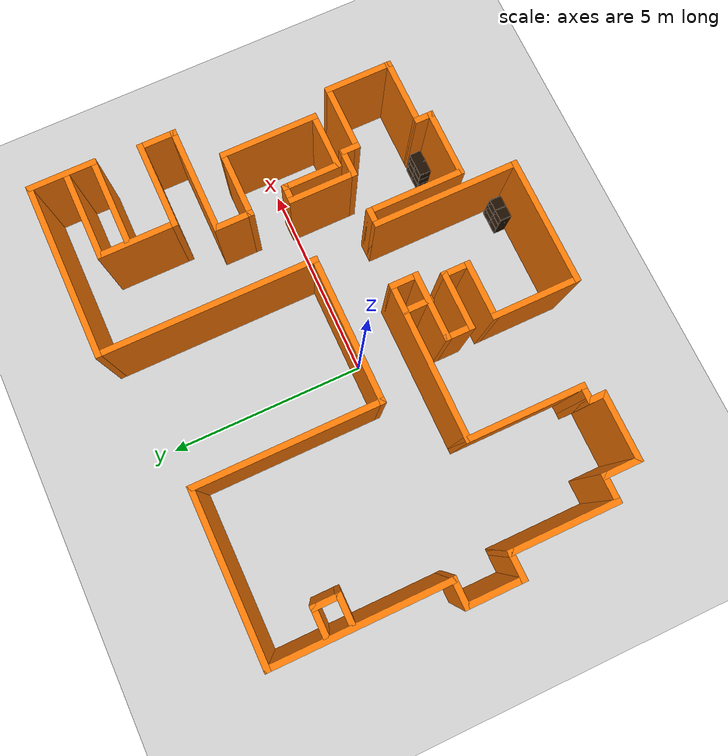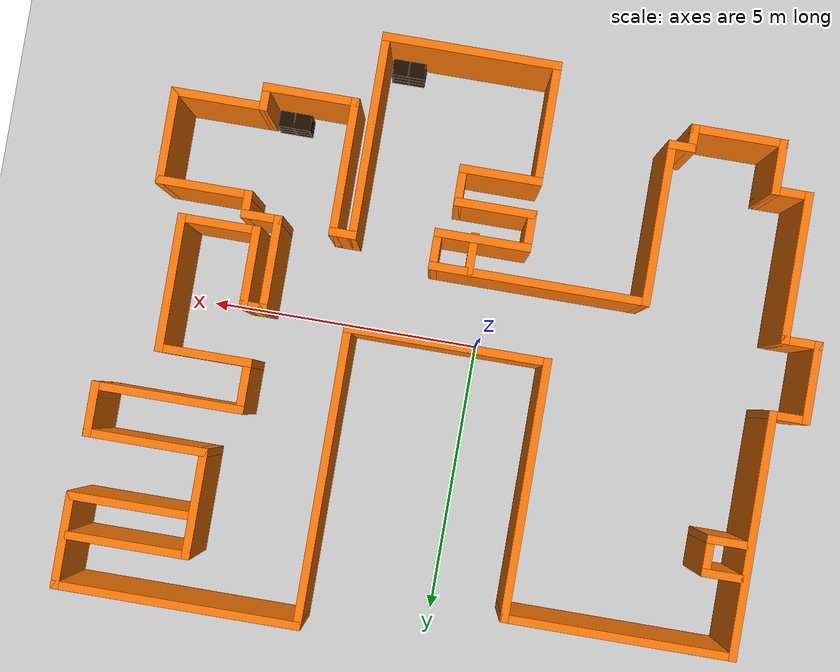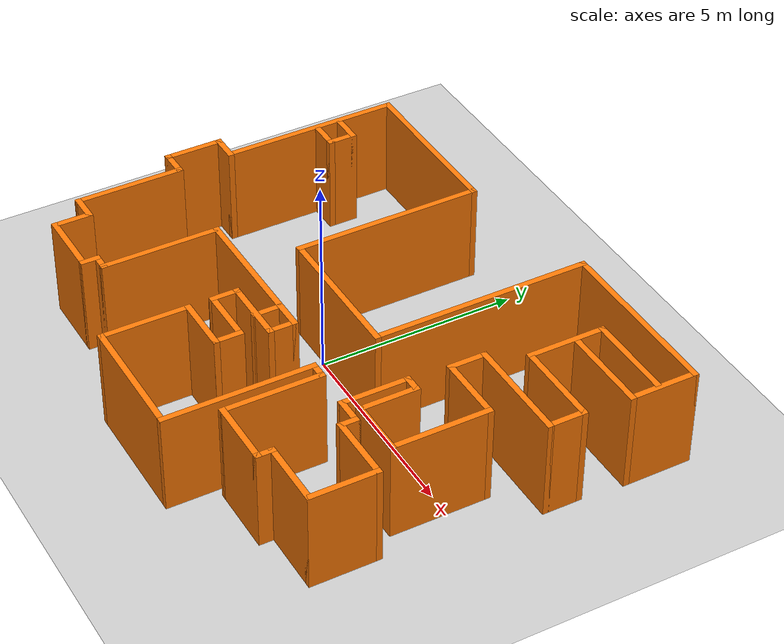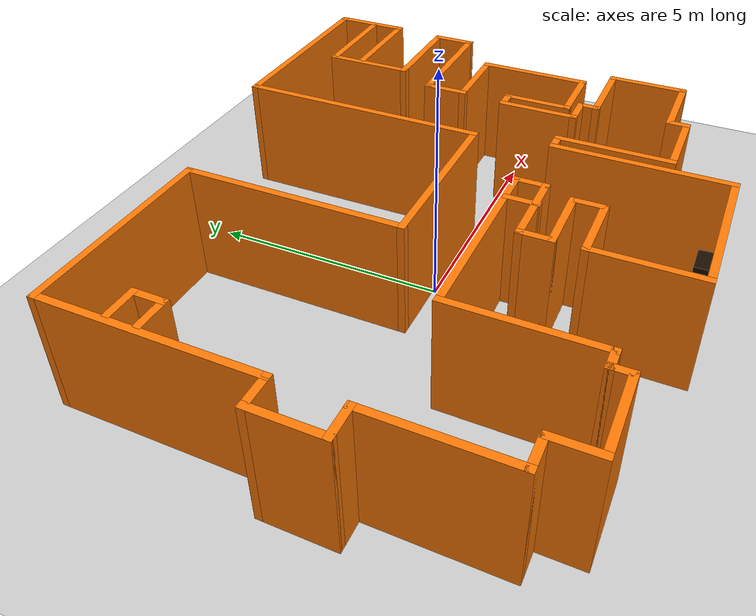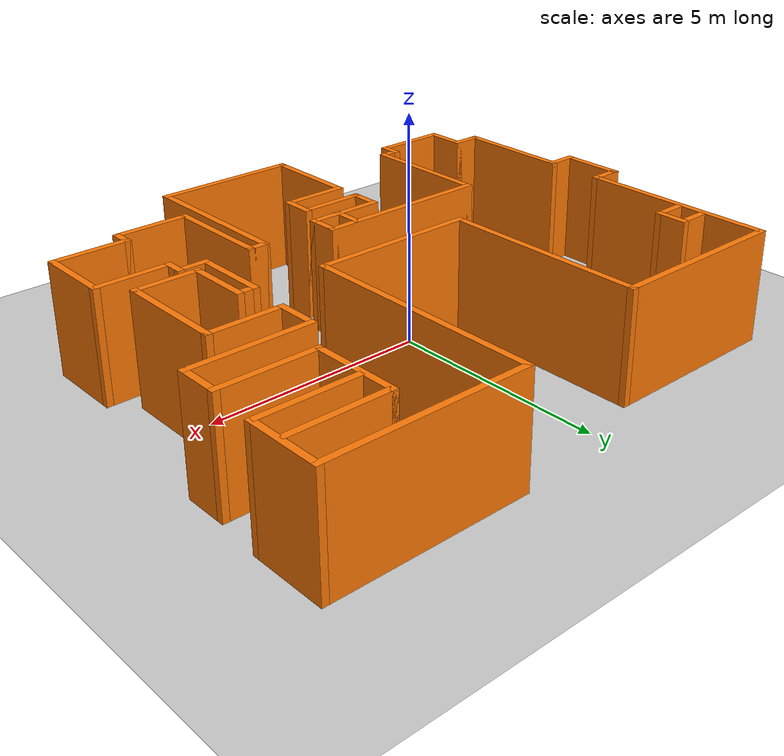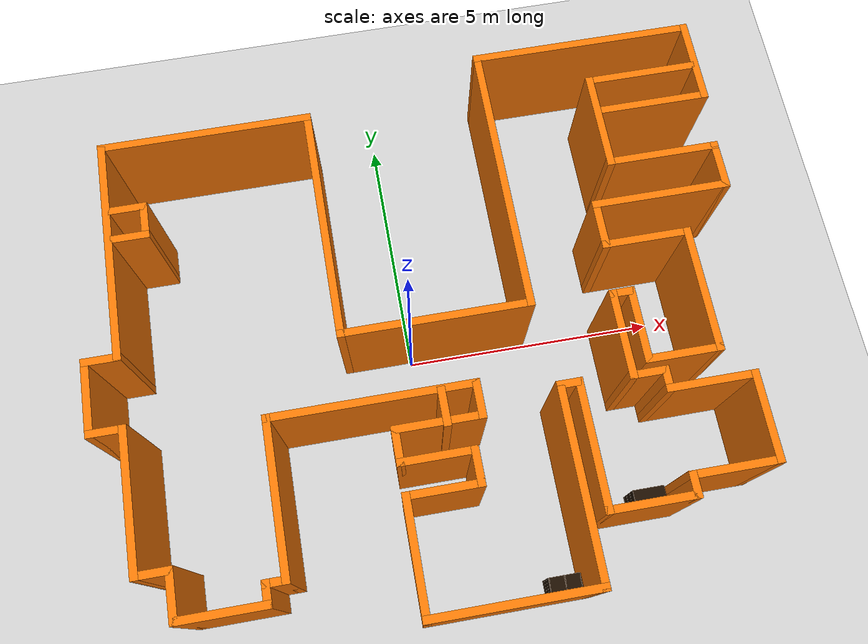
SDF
<sdf version="1.6">
 <world name="default">
  <light name="sun" type="directional">
   <pose>0 0 10 0 -0 0</pose>
   <diffuse>0.8 0.8 0.8 1</diffuse>
   <specular>0.2 0.2 0.2 1</specular>
   <attenuation>
    <range>1000</range>
    <constant>0.9</constant>
    <linear>0.01</linear>
    <quadratic>0.001</quadratic>
   </attenuation>
   <direction>-0.5 0.1 -0.9</direction>
  </light>
  <model name="ground_plane">
   <static>1</static>
   <link name="link">
    <collision name="collision">
     <geometry><plane><normal>0 0 1</normal><size>100 100</size></plane></geometry>
     <surface>
      <contact><collide_bitmask>65535</collide_bitmask></contact>
      <friction><ode><mu>100</mu><mu2>50</mu2></ode></friction>
     </surface>
    </collision>
    <visual name="visual">
     <cast_shadows>0</cast_shadows>
     <geometry><plane><normal>0 0 1</normal><size>100 100</size></plane></geometry>
     <material>
      <script><uri>file://media/materials/scripts/gazebo.material</uri><name>Gazebo/Grey</name></script>
     </material>
    </visual>
   </link>
  </model>
  <gravity>0 0 -9.8</gravity>
  <magnetic_field>6e-06 2.3e-05 -4.2e-05</magnetic_field>
  <atmosphere type="adiabatic"/>
  <physics name="default_physics" default="0" type="ode">
   <max_step_size>0.001</max_step_size>
   <real_time_factor>1</real_time_factor>
   <real_time_update_rate>1000</real_time_update_rate>
  </physics>
  <scene><ambient>0.4 0.4 0.4 1</ambient><background>0.7 0.7 0.7 1</background><shadows>1</shadows></scene>
  <audio><device>default</device></audio>
  <spherical_coordinates>
   <surface_model>EARTH_WGS84</surface_model>
   <latitude_deg>0</latitude_deg>
   <longitude_deg>0</longitude_deg>
   <elevation>0</elevation>
   <heading_deg>0</heading_deg>
  </spherical_coordinates>
  <model name="map_75">
   <pose>0.338098 0.174003 0 0 -0 0</pose>
   <link name="Wall_10">
    <collision name="Wall_10_Collision">
     <geometry><box><size>1.5 0.15 2.5</size></box></geometry>
     <pose>0 0 1.25 0 -0 0</pose>
    </collision>
    <visual name="Wall_10_Visual">
     <pose>0 0 1.25 0 -0 0</pose>
     <geometry><box><size>1.5 0.15 2.5</size></box></geometry>
     <material>
      <script><uri>file://media/materials/scripts/gazebo.material</uri><name>Gazebo/Grey</name></script>
      <ambient>0.996078 0.47451 0.0196078 1</ambient>
     </material>
     <meta><layer>0</layer></meta>
    </visual>
    <pose>-6.325 -0.475 0 0 -0 -1.5708</pose>
   </link>
   <link name="Wall_11">
    <collision name="Wall_11_Collision">
     <geometry><box><size>0.75 0.15 2.5</size></box></geometry>
     <pose>0 0 1.25 0 -0 0</pose>
    </collision>
    <visual name="Wall_11_Visual">
     <pose>0 0 1.25 0 -0 0</pose>
     <geometry><box><size>0.75 0.15 2.5</size></box></geometry>
     <material>
      <script><uri>file://media/materials/scripts/gazebo.material</uri><name>Gazebo/Grey</name></script>
      <ambient>0.996078 0.47451 0.0196078 1</ambient>
     </material>
     <meta><layer>0</layer></meta>
    </visual>
    <pose>-6.025 -1.15 0 0 -0 0</pose>
   </link>
   <link name="Wall_12">
    <collision name="Wall_12_Collision">
     <geometry><box><size>2.75 0.15 2.5</size></box></geometry>
     <pose>0 0 1.25 0 -0 0</pose>
    </collision>
    <visual name="Wall_12_Visual">
     <pose>0 0 1.25 0 -0 0</pose>
     <geometry><box><size>2.75 0.15 2.5</size></box></geometry>
     <material>
      <script><uri>file://media/materials/scripts/gazebo.material</uri><name>Gazebo/Grey</name></script>
      <ambient>0.996078 0.47451 0.0196078 1</ambient>
     </material>
     <meta><layer>0</layer></meta>
    </visual>
    <pose>-5.725 -2.45 0 0 -0 -1.5708</pose>
   </link>
   <link name="Wall_13">
    <collision name="Wall_13_Collision">
     <geometry><box><size>0.75 0.15 2.5</size></box></geometry>
     <pose>0 0 1.25 0 -0 0</pose>
    </collision>
    <visual name="Wall_13_Visual">
     <pose>0 0 1.25 0 -0 0</pose>
     <geometry><box><size>0.75 0.15 2.5</size></box></geometry>
     <material>
      <script><uri>file://media/materials/scripts/gazebo.material</uri><name>Gazebo/Grey</name></script>
      <ambient>0.996078 0.47451 0.0196078 1</ambient>
     </material>
     <meta><layer>0</layer></meta>
    </visual>
    <pose>-5.425 -3.75 0 0 -0 0</pose>
   </link>
   <link name="Wall_14">
    <collision name="Wall_14_Collision">
     <geometry><box><size>1 0.15 2.5</size></box></geometry>
     <pose>0 0 1.25 0 -0 0</pose>
    </collision>
    <visual name="Wall_14_Visual">
     <pose>0 0 1.25 0 -0 0</pose>
     <geometry><box><size>1 0.15 2.5</size></box></geometry>
     <material>
      <script><uri>file://media/materials/scripts/gazebo.material</uri><name>Gazebo/Grey</name></script>
      <ambient>0.996078 0.47451 0.0196078 1</ambient>
     </material>
     <meta><layer>0</layer></meta>
    </visual>
    <pose>-5.125 -4.175 0 0 -0 -1.5708</pose>
   </link>
   <link name="Wall_15">
    <collision name="Wall_15_Collision">
     <geometry><box><size>1.75 0.15 2.5</size></box></geometry>
     <pose>0 0 1.25 0 -0 0</pose>
    </collision>
    <visual name="Wall_15_Visual">
     <pose>0 0 1.25 0 -0 0</pose>
     <geometry><box><size>1.75 0.15 2.5</size></box></geometry>
     <material>
      <script><uri>file://media/materials/scripts/gazebo.material</uri><name>Gazebo/Grey</name></script>
      <ambient>0.996078 0.47451 0.0196078 1</ambient>
     </material>
     <meta><layer>0</layer></meta>
    </visual>
    <pose>-4.325 -4.6 0 0 -0 0</pose>
   </link>
   <link name="Wall_16">
    <collision name="Wall_16_Collision">
     <geometry><box><size>0.5 0.15 2.5</size></box></geometry>
     <pose>0 0 1.25 0 -0 0</pose>
    </collision>
    <visual name="Wall_16_Visual">
     <pose>0 0 1.25 0 -0 0</pose>
     <geometry><box><size>0.5 0.15 2.5</size></box></geometry>
     <material>
      <script><uri>file://media/materials/scripts/gazebo.material</uri><name>Gazebo/Grey</name></script>
      <ambient>0.996078 0.47451 0.0196078 1</ambient>
     </material>
     <meta><layer>0</layer></meta>
    </visual>
    <pose>-3.525 -4.425 0 0 -0 1.5708</pose>
   </link>
   <link name="Wall_17">
    <collision name="Wall_17_Collision">
     <geometry><box><size>0.5 0.15 2.5</size></box></geometry>
     <pose>0 0 1.25 0 -0 0</pose>
    </collision>
    <visual name="Wall_17_Visual">
     <pose>0 0 1.25 0 -0 0</pose>
     <geometry><box><size>0.5 0.15 2.5</size></box></geometry>
     <material>
      <script><uri>file://media/materials/scripts/gazebo.material</uri><name>Gazebo/Grey</name></script>
      <ambient>0.996078 0.47451 0.0196078 1</ambient>
     </material>
     <meta><layer>0</layer></meta>
    </visual>
    <pose>-3.35 -4.25 0 0 -0 0</pose>
   </link>
   <link name="Wall_18">
    <collision name="Wall_18_Collision">
     <geometry><box><size>3 0.15 2.5</size></box></geometry>
     <pose>0 0 1.25 0 -0 0</pose>
    </collision>
    <visual name="Wall_18_Visual">
     <pose>0 0 1.25 0 -0 0</pose>
     <geometry><box><size>3 0.15 2.5</size></box></geometry>
     <material>
      <script><uri>file://media/materials/scripts/gazebo.material</uri><name>Gazebo/Grey</name></script>
      <ambient>0.996078 0.47451 0.0196078 1</ambient>
     </material>
     <meta><layer>0</layer></meta>
    </visual>
    <pose>-3.175 -2.825 0 0 -0 1.5708</pose>
   </link>
   <link name="Wall_19">
    <collision name="Wall_19_Collision">
     <geometry><box><size>4 0.15 2.5</size></box></geometry>
     <pose>0 0 1.25 0 -0 0</pose>
    </collision>
    <visual name="Wall_19_Visual">
     <pose>0 0 1.25 0 -0 0</pose>
     <geometry><box><size>4 0.15 2.5</size></box></geometry>
     <material>
      <script><uri>file://media/materials/scripts/gazebo.material</uri><name>Gazebo/Grey</name></script>
      <ambient>0.996078 0.47451 0.0196078 1</ambient>
     </material>
     <meta><layer>0</layer></meta>
    </visual>
    <pose>-1.25 -1.4 0 0 -0 0</pose>
   </link>
   <link name="Wall_2">
    <collision name="Wall_2_Collision">
     <geometry><box><size>4.5 0.15 2.5</size></box></geometry>
     <pose>0 0 1.25 0 -0 0</pose>
    </collision>
    <visual name="Wall_2_Visual">
     <pose>0 0 1.25 0 -0 0</pose>
     <geometry><box><size>4.5 0.15 2.5</size></box></geometry>
     <material>
      <script><uri>file://media/materials/scripts/gazebo.material</uri><name>Gazebo/Grey</name></script>
      <ambient>0.996078 0.47451 0.0196078 1</ambient>
     </material>
     <meta><layer>0</layer></meta>
    </visual>
    <pose>4.15 5.3 0 0 -0 3.14159</pose>
   </link>
   <link name="Wall_20">
    <collision name="Wall_20_Collision">
     <geometry><box><size>0.75 0.15 2.5</size></box></geometry>
     <pose>0 0 1.25 0 -0 0</pose>
    </collision>
    <visual name="Wall_20_Visual">
     <pose>0 0 1.25 0 -0 0</pose>
     <geometry><box><size>0.75 0.15 2.5</size></box></geometry>
     <material>
      <script><uri>file://media/materials/scripts/gazebo.material</uri><name>Gazebo/Grey</name></script>
      <ambient>0.996078 0.47451 0.0196078 1</ambient>
     </material>
     <meta><layer>0</layer></meta>
    </visual>
    <pose>0.675 -1.7 0 0 -0 -1.5708</pose>
   </link>
   <link name="Wall_22">
    <collision name="Wall_22_Collision">
     <geometry><box><size>0.75 0.15 2.5</size></box></geometry>
     <pose>0 0 1.25 0 -0 0</pose>
    </collision>
    <visual name="Wall_22_Visual">
     <pose>0 0 1.25 0 -0 0</pose>
     <geometry><box><size>0.75 0.15 2.5</size></box></geometry>
     <material>
      <script><uri>file://media/materials/scripts/gazebo.material</uri><name>Gazebo/Grey</name></script>
      <ambient>0.996078 0.47451 0.0196078 1</ambient>
     </material>
     <meta><layer>0</layer></meta>
    </visual>
    <pose>0.023413 -1.72985 0 0 -0 -1.5708</pose>
   </link>
   <link name="Wall_24">
    <collision name="Wall_24_Collision">
     <geometry><box><size>1.75 0.15 2.5</size></box></geometry>
     <pose>0 0 1.25 0 -0 0</pose>
    </collision>
    <visual name="Wall_24_Visual">
     <pose>0 0 1.25 0 -0 0</pose>
     <geometry><box><size>1.75 0.15 2.5</size></box></geometry>
     <material>
      <script><uri>file://media/materials/scripts/gazebo.material</uri><name>Gazebo/Grey</name></script>
      <ambient>0.996078 0.47451 0.0196078 1</ambient>
     </material>
     <meta><layer>0</layer></meta>
    </visual>
    <pose>-0.125 -2 0 0 -0 3.14159</pose>
   </link>
   <link name="Wall_25">
    <collision name="Wall_25_Collision">
     <geometry><box><size>0.75 0.15 2.5</size></box></geometry>
     <pose>0 0 1.25 0 -0 0</pose>
    </collision>
    <visual name="Wall_25_Visual">
     <pose>0 0 1.25 0 -0 0</pose>
     <geometry><box><size>0.75 0.15 2.5</size></box></geometry>
     <material>
      <script><uri>file://media/materials/scripts/gazebo.material</uri><name>Gazebo/Grey</name></script>
      <ambient>0.996078 0.47451 0.0196078 1</ambient>
     </material>
     <meta><layer>0</layer></meta>
    </visual>
    <pose>-0.925 -2.3 0 0 -0 -1.5708</pose>
   </link>
   <link name="Wall_26">
    <collision name="Wall_26_Collision">
     <geometry><box><size>1.5 0.15 2.5</size></box></geometry>
     <pose>0 0 1.25 0 -0 0</pose>
    </collision>
    <visual name="Wall_26_Visual">
     <pose>0 0 1.25 0 -0 0</pose>
     <geometry><box><size>1.5 0.15 2.5</size></box></geometry>
     <material>
      <script><uri>file://media/materials/scripts/gazebo.material</uri><name>Gazebo/Grey</name></script>
      <ambient>0.996078 0.47451 0.0196078 1</ambient>
     </material>
     <meta><layer>0</layer></meta>
    </visual>
    <pose>-0.25 -2.6 0 0 -0 0</pose>
   </link>
   <link name="Wall_27">
    <collision name="Wall_27_Collision">
     <geometry><box><size>0.75 0.15 2.5</size></box></geometry>
     <pose>0 0 1.25 0 -0 0</pose>
    </collision>
    <visual name="Wall_27_Visual">
     <pose>0 0 1.25 0 -0 0</pose>
     <geometry><box><size>0.75 0.15 2.5</size></box></geometry>
     <material>
      <script><uri>file://media/materials/scripts/gazebo.material</uri><name>Gazebo/Grey</name></script>
      <ambient>0.996078 0.47451 0.0196078 1</ambient>
     </material>
     <meta><layer>0</layer></meta>
    </visual>
    <pose>0.425 -2.9 0 0 -0 -1.5708</pose>
   </link>
   <link name="Wall_28">
    <collision name="Wall_28_Collision">
     <geometry><box><size>1.5 0.15 2.5</size></box></geometry>
     <pose>0 0 1.25 0 -0 0</pose>
    </collision>
    <visual name="Wall_28_Visual">
     <pose>0 0 1.25 0 -0 0</pose>
     <geometry><box><size>1.5 0.15 2.5</size></box></geometry>
     <material>
      <script><uri>file://media/materials/scripts/gazebo.material</uri><name>Gazebo/Grey</name></script>
      <ambient>0.996078 0.47451 0.0196078 1</ambient>
     </material>
     <meta><layer>0</layer></meta>
    </visual>
    <pose>-0.25 -3.2 0 0 -0 3.14159</pose>
   </link>
   <link name="Wall_29">
    <collision name="Wall_29_Collision">
     <geometry><box><size>2.25 0.15 2.5</size></box></geometry>
     <pose>0 0 1.25 0 -0 0</pose>
    </collision>
    <visual name="Wall_29_Visual">
     <pose>0 0 1.25 0 -0 0</pose>
     <geometry><box><size>2.25 0.15 2.5</size></box></geometry>
     <material>
      <script><uri>file://media/materials/scripts/gazebo.material</uri><name>Gazebo/Grey</name></script>
      <ambient>0.996078 0.47451 0.0196078 1</ambient>
     </material>
     <meta><layer>0</layer></meta>
    </visual>
    <pose>-0.925 -4.25 0 0 -0 -1.5708</pose>
   </link>
   <link name="Wall_3">
    <collision name="Wall_3_Collision">
     <geometry><box><size>5.5 0.15 2.5</size></box></geometry>
     <pose>0 0 1.25 0 -0 0</pose>
    </collision>
    <visual name="Wall_3_Visual">
     <pose>0 0 1.25 0 -0 0</pose>
     <geometry><box><size>5.5 0.15 2.5</size></box></geometry>
     <material>
      <script><uri>file://media/materials/scripts/gazebo.material</uri><name>Gazebo/Grey</name></script>
      <ambient>0.996078 0.47451 0.0196078 1</ambient>
     </material>
     <meta><layer>0</layer></meta>
    </visual>
    <pose>1.975 2.625 0 0 -0 -1.5708</pose>
   </link>
   <link name="Wall_32">
    <collision name="Wall_32_Collision">
     <geometry><box><size>0.5 0.15 2.5</size></box></geometry>
     <pose>0 0 1.25 0 -0 0</pose>
    </collision>
    <visual name="Wall_32_Visual">
     <pose>0 0 1.25 0 -0 0</pose>
     <geometry><box><size>0.5 0.15 2.5</size></box></geometry>
     <material>
      <script><uri>file://media/materials/scripts/gazebo.material</uri><name>Gazebo/Grey</name></script>
      <ambient>0.996078 0.47451 0.0196078 1</ambient>
     </material>
     <meta><layer>0</layer></meta>
    </visual>
    <pose>2.35 -1.7 0 0 -0 0</pose>
   </link>
   <link name="Wall_33">
    <collision name="Wall_33_Collision">
     <geometry><box><size>2.5 0.15 2.5</size></box></geometry>
     <pose>0 0 1.25 0 -0 0</pose>
    </collision>
    <visual name="Wall_33_Visual">
     <pose>0 0 1.25 0 -0 0</pose>
     <geometry><box><size>2.5 0.15 2.5</size></box></geometry>
     <material>
      <script><uri>file://media/materials/scripts/gazebo.material</uri><name>Gazebo/Grey</name></script>
      <ambient>0.996078 0.47451 0.0196078 1</ambient>
     </material>
     <meta><layer>0</layer></meta>
    </visual>
    <pose>2.525 -2.875 0 0 -0 -1.5708</pose>
   </link>
   <link name="Wall_34">
    <collision name="Wall_34_Collision">
     <geometry><box><size>1.75 0.15 2.5</size></box></geometry>
     <pose>0 0 1.25 0 -0 0</pose>
    </collision>
    <visual name="Wall_34_Visual">
     <pose>0 0 1.25 0 -0 0</pose>
     <geometry><box><size>1.75 0.15 2.5</size></box></geometry>
     <material>
      <script><uri>file://media/materials/scripts/gazebo.material</uri><name>Gazebo/Grey</name></script>
      <ambient>0.996078 0.47451 0.0196078 1</ambient>
     </material>
     <meta><layer>0</layer></meta>
    </visual>
    <pose>3.325 -4.05 0 0 -0 0</pose>
   </link>
   <link name="Wall_35">
    <collision name="Wall_35_Collision">
     <geometry><box><size>0.5 0.15 2.5</size></box></geometry>
     <pose>0 0 1.25 0 -0 0</pose>
    </collision>
    <visual name="Wall_35_Visual">
     <pose>0 0 1.25 0 -0 0</pose>
     <geometry><box><size>0.5 0.15 2.5</size></box></geometry>
     <material>
      <script><uri>file://media/materials/scripts/gazebo.material</uri><name>Gazebo/Grey</name></script>
      <ambient>0.996078 0.47451 0.0196078 1</ambient>
     </material>
     <meta><layer>0</layer></meta>
    </visual>
    <pose>4.125 -3.875 0 0 -0 1.5708</pose>
   </link>
   <link name="Wall_36">
    <collision name="Wall_36_Collision">
     <geometry><box><size>1.75 0.15 2.5</size></box></geometry>
     <pose>0 0 1.25 0 -0 0</pose>
    </collision>
    <visual name="Wall_36_Visual">
     <pose>0 0 1.25 0 -0 0</pose>
     <geometry><box><size>1.75 0.15 2.5</size></box></geometry>
     <material>
      <script><uri>file://media/materials/scripts/gazebo.material</uri><name>Gazebo/Grey</name></script>
      <ambient>0.996078 0.47451 0.0196078 1</ambient>
     </material>
     <meta><layer>0</layer></meta>
    </visual>
    <pose>4.925 -3.7 0 0 -0 0</pose>
   </link>
   <link name="Wall_37">
    <collision name="Wall_37_Collision">
     <geometry><box><size>1.75 0.15 2.5</size></box></geometry>
     <pose>0 0 1.25 0 -0 0</pose>
    </collision>
    <visual name="Wall_37_Visual">
     <pose>0 0 1.25 0 -0 0</pose>
     <geometry><box><size>1.75 0.15 2.5</size></box></geometry>
     <material>
      <script><uri>file://media/materials/scripts/gazebo.material</uri><name>Gazebo/Grey</name></script>
      <ambient>0.996078 0.47451 0.0196078 1</ambient>
     </material>
     <meta><layer>0</layer></meta>
    </visual>
    <pose>5.725 -2.9 0 0 -0 1.5708</pose>
   </link>
   <link name="Wall_38">
    <collision name="Wall_38_Collision">
     <geometry><box><size>1.75 0.15 2.5</size></box></geometry>
     <pose>0 0 1.25 0 -0 0</pose>
    </collision>
    <visual name="Wall_38_Visual">
     <pose>0 0 1.25 0 -0 0</pose>
     <geometry><box><size>1.75 0.15 2.5</size></box></geometry>
     <material>
      <script><uri>file://media/materials/scripts/gazebo.material</uri><name>Gazebo/Grey</name></script>
      <ambient>0.996078 0.47451 0.0196078 1</ambient>
     </material>
     <meta><layer>0</layer></meta>
    </visual>
    <pose>4.925 -2.1 0 0 -0 3.14159</pose>
   </link>
   <link name="Wall_39">
    <collision name="Wall_39_Collision">
     <geometry><box><size>0.5 0.15 2.5</size></box></geometry>
     <pose>0 0 1.25 0 -0 0</pose>
    </collision>
    <visual name="Wall_39_Visual">
     <pose>0 0 1.25 0 -0 0</pose>
     <geometry><box><size>0.5 0.15 2.5</size></box></geometry>
     <material>
      <script><uri>file://media/materials/scripts/gazebo.material</uri><name>Gazebo/Grey</name></script>
      <ambient>0.996078 0.47451 0.0196078 1</ambient>
     </material>
     <meta><layer>0</layer></meta>
    </visual>
    <pose>4.125 -1.925 0 0 -0 1.5708</pose>
   </link>
   <link name="Wall_4">
    <collision name="Wall_4_Collision">
     <geometry><box><size>3.75 0.15 2.5</size></box></geometry>
     <pose>0 0 1.25 0 -0 0</pose>
    </collision>
    <visual name="Wall_4_Visual">
     <pose>0 0 1.25 0 -0 0</pose>
     <geometry><box><size>3.75 0.15 2.5</size></box></geometry>
     <material>
      <script><uri>file://media/materials/scripts/gazebo.material</uri><name>Gazebo/Grey</name></script>
      <ambient>0.996078 0.47451 0.0196078 1</ambient>
     </material>
     <meta><layer>0</layer></meta>
    </visual>
    <pose>0.175 -0.05 0 0 -0 3.14159</pose>
   </link>
   <link name="Wall_40">
    <collision name="Wall_40_Collision">
     <geometry><box><size>0.75 0.15 2.5</size></box></geometry>
     <pose>0 0 1.25 0 -0 0</pose>
    </collision>
    <visual name="Wall_40_Visual">
     <pose>0 0 1.25 0 -0 0</pose>
     <geometry><box><size>0.75 0.15 2.5</size></box></geometry>
     <material>
      <script><uri>file://media/materials/scripts/gazebo.material</uri><name>Gazebo/Grey</name></script>
      <ambient>0.996078 0.47451 0.0196078 1</ambient>
     </material>
     <meta><layer>0</layer></meta>
    </visual>
    <pose>3.825 -1.75 0 0 -0 3.14159</pose>
   </link>
   <link name="Wall_41">
    <collision name="Wall_41_Collision">
     <geometry><box><size>1.75 0.15 2.5</size></box></geometry>
     <pose>0 0 1.25 0 -0 0</pose>
    </collision>
    <visual name="Wall_41_Visual">
     <pose>0 0 1.25 0 -0 0</pose>
     <geometry><box><size>1.75 0.15 2.5</size></box></geometry>
     <material>
      <script><uri>file://media/materials/scripts/gazebo.material</uri><name>Gazebo/Grey</name></script>
      <ambient>0.996078 0.47451 0.0196078 1</ambient>
     </material>
     <meta><layer>0</layer></meta>
    </visual>
    <pose>3.525 -0.95 0 0 -0 1.5708</pose>
   </link>
   <link name="Wall_44">
    <collision name="Wall_44_Collision">
     <geometry><box><size>0.5 0.15 2.5</size></box></geometry>
     <pose>0 0 1.25 0 -0 0</pose>
    </collision>
    <visual name="Wall_44_Visual">
     <pose>0 0 1.25 0 -0 0</pose>
     <geometry><box><size>0.5 0.15 2.5</size></box></geometry>
     <material>
      <script><uri>file://media/materials/scripts/gazebo.material</uri><name>Gazebo/Grey</name></script>
      <ambient>0.996078 0.47451 0.0196078 1</ambient>
     </material>
     <meta><layer>0</layer></meta>
    </visual>
    <pose>3.7 -0.15 0 0 -0 0</pose>
   </link>
   <link name="Wall_45">
    <collision name="Wall_45_Collision">
     <geometry><box><size>1.5 0.15 2.5</size></box></geometry>
     <pose>0 0 1.25 0 -0 0</pose>
    </collision>
    <visual name="Wall_45_Visual">
     <pose>0 0 1.25 0 -0 0</pose>
     <geometry><box><size>1.5 0.15 2.5</size></box></geometry>
     <material>
      <script><uri>file://media/materials/scripts/gazebo.material</uri><name>Gazebo/Grey</name></script>
      <ambient>0.996078 0.47451 0.0196078 1</ambient>
     </material>
     <meta><layer>0</layer></meta>
    </visual>
    <pose>3.875 -0.825 0 0 -0 -1.5708</pose>
   </link>
   <link name="Wall_46">
    <collision name="Wall_46_Collision">
     <geometry><box><size>1.5 0.15 2.5</size></box></geometry>
     <pose>0 0 1.25 0 -0 0</pose>
    </collision>
    <visual name="Wall_46_Visual">
     <pose>0 0 1.25 0 -0 0</pose>
     <geometry><box><size>1.5 0.15 2.5</size></box></geometry>
     <material>
      <script><uri>file://media/materials/scripts/gazebo.material</uri><name>Gazebo/Grey</name></script>
      <ambient>0.996078 0.47451 0.0196078 1</ambient>
     </material>
     <meta><layer>0</layer></meta>
    </visual>
    <pose>4.55 -1.5 0 0 -0 0</pose>
   </link>
   <link name="Wall_47">
    <collision name="Wall_47_Collision">
     <geometry><box><size>2.5 0.15 2.5</size></box></geometry>
     <pose>0 0 1.25 0 -0 0</pose>
    </collision>
    <visual name="Wall_47_Visual">
     <pose>0 0 1.25 0 -0 0</pose>
     <geometry><box><size>2.5 0.15 2.5</size></box></geometry>
     <material>
      <script><uri>file://media/materials/scripts/gazebo.material</uri><name>Gazebo/Grey</name></script>
      <ambient>0.996078 0.47451 0.0196078 1</ambient>
     </material>
     <meta><layer>0</layer></meta>
    </visual>
    <pose>5.225 -0.325 0 0 -0 1.5708</pose>
   </link>
   <link name="Wall_48">
    <collision name="Wall_48_Collision">
     <geometry><box><size>1.75 0.15 2.5</size></box></geometry>
     <pose>0 0 1.25 0 -0 0</pose>
    </collision>
    <visual name="Wall_48_Visual">
     <pose>0 0 1.25 0 -0 0</pose>
     <geometry><box><size>1.75 0.15 2.5</size></box></geometry>
     <material>
      <script><uri>file://media/materials/scripts/gazebo.material</uri><name>Gazebo/Grey</name></script>
      <ambient>0.996078 0.47451 0.0196078 1</ambient>
     </material>
     <meta><layer>0</layer></meta>
    </visual>
    <pose>4.425 0.85 0 0 -0 3.14159</pose>
   </link>
   <link name="Wall_49">
    <collision name="Wall_49_Collision">
     <geometry><box><size>1 0.15 2.5</size></box></geometry>
     <pose>0 0 1.25 0 -0 0</pose>
    </collision>
    <visual name="Wall_49_Visual">
     <pose>0 0 1.25 0 -0 0</pose>
     <geometry><box><size>1 0.15 2.5</size></box></geometry>
     <material>
      <script><uri>file://media/materials/scripts/gazebo.material</uri><name>Gazebo/Grey</name></script>
      <ambient>0.996078 0.47451 0.0196078 1</ambient>
     </material>
     <meta><layer>0</layer></meta>
    </visual>
    <pose>3.625 1.275 0 0 -0 1.5708</pose>
   </link>
   <link name="Wall_50">
    <collision name="Wall_50_Collision">
     <geometry><box><size>2.75 0.15 2.5</size></box></geometry>
     <pose>0 0 1.25 0 -0 0</pose>
    </collision>
    <visual name="Wall_50_Visual">
     <pose>0 0 1.25 0 -0 0</pose>
     <geometry><box><size>2.75 0.15 2.5</size></box></geometry>
     <material>
      <script><uri>file://media/materials/scripts/gazebo.material</uri><name>Gazebo/Grey</name></script>
      <ambient>0.996078 0.47451 0.0196078 1</ambient>
     </material>
     <meta><layer>0</layer></meta>
    </visual>
    <pose>4.925 1.7 0 0 -0 0</pose>
   </link>
   <link name="Wall_51">
    <collision name="Wall_51_Collision">
     <geometry><box><size>1 0.15 2.5</size></box></geometry>
     <pose>0 0 1.25 0 -0 0</pose>
    </collision>
    <visual name="Wall_51_Visual">
     <pose>0 0 1.25 0 -0 0</pose>
     <geometry><box><size>1 0.15 2.5</size></box></geometry>
     <material>
      <script><uri>file://media/materials/scripts/gazebo.material</uri><name>Gazebo/Grey</name></script>
      <ambient>0.996078 0.47451 0.0196078 1</ambient>
     </material>
     <meta><layer>0</layer></meta>
    </visual>
    <pose>6.225 2.125 0 0 -0 1.5708</pose>
   </link>
   <link name="Wall_52">
    <collision name="Wall_52_Collision">
     <geometry><box><size>2.25 0.15 2.5</size></box></geometry>
     <pose>0 0 1.25 0 -0 0</pose>
    </collision>
    <visual name="Wall_52_Visual">
     <pose>0 0 1.25 0 -0 0</pose>
     <geometry><box><size>2.25 0.15 2.5</size></box></geometry>
     <material>
      <script><uri>file://media/materials/scripts/gazebo.material</uri><name>Gazebo/Grey</name></script>
      <ambient>0.996078 0.47451 0.0196078 1</ambient>
     </material>
     <meta><layer>0</layer></meta>
    </visual>
    <pose>5.175 2.55 0 0 -0 3.14159</pose>
   </link>
   <link name="Wall_53">
    <collision name="Wall_53_Collision">
     <geometry><box><size>2 0.15 2.5</size></box></geometry>
     <pose>0 0 1.25 0 -0 0</pose>
    </collision>
    <visual name="Wall_53_Visual">
     <pose>0 0 1.25 0 -0 0</pose>
     <geometry><box><size>2 0.15 2.5</size></box></geometry>
     <material>
      <script><uri>file://media/materials/scripts/gazebo.material</uri><name>Gazebo/Grey</name></script>
      <ambient>0.996078 0.47451 0.0196078 1</ambient>
     </material>
     <meta><layer>0</layer></meta>
    </visual>
    <pose>4.125 3.475 0 0 -0 1.5708</pose>
   </link>
   <link name="Wall_54">
    <collision name="Wall_54_Collision">
     <geometry><box><size>2.25 0.15 2.5</size></box></geometry>
     <pose>0 0 1.25 0 -0 0</pose>
    </collision>
    <visual name="Wall_54_Visual">
     <pose>0 0 1.25 0 -0 0</pose>
     <geometry><box><size>2.25 0.15 2.5</size></box></geometry>
     <material>
      <script><uri>file://media/materials/scripts/gazebo.material</uri><name>Gazebo/Grey</name></script>
      <ambient>0.996078 0.47451 0.0196078 1</ambient>
     </material>
     <meta><layer>0</layer></meta>
    </visual>
    <pose>5.175 4.4 0 0 -0 0</pose>
   </link>
   <link name="Wall_56">
    <collision name="Wall_56_Collision">
     <geometry><box><size>1.75 0.15 2.5</size></box></geometry>
     <pose>0 0 1.25 0 -0 0</pose>
    </collision>
    <visual name="Wall_56_Visual">
     <pose>0 0 1.25 0 -0 0</pose>
     <geometry><box><size>1.75 0.15 2.5</size></box></geometry>
     <material>
      <script><uri>file://media/materials/scripts/gazebo.material</uri><name>Gazebo/Grey</name></script>
      <ambient>0.996078 0.47451 0.0196078 1</ambient>
     </material>
     <meta><layer>0</layer></meta>
    </visual>
    <pose>6.325 4.5 0 0 -0 -1.5708</pose>
   </link>
   <link name="Wall_57">
    <collision name="Wall_57_Collision">
     <geometry><box><size>2.25 0.15 2.5</size></box></geometry>
     <pose>0 0 1.25 0 -0 0</pose>
    </collision>
    <visual name="Wall_57_Visual">
     <pose>0 0 1.25 0 -0 0</pose>
     <geometry><box><size>2.25 0.15 2.5</size></box></geometry>
     <material>
      <script><uri>file://media/materials/scripts/gazebo.material</uri><name>Gazebo/Grey</name></script>
      <ambient>0.996078 0.47451 0.0196078 1</ambient>
     </material>
     <meta><layer>0</layer></meta>
    </visual>
    <pose>5.275 3.7 0 0 -0 3.14159</pose>
   </link>
   <link name="Wall_6">
    <collision name="Wall_6_Collision">
     <geometry><box><size>4.75 0.15 2.5</size></box></geometry>
     <pose>0 0 1.25 0 -0 0</pose>
    </collision>
    <visual name="Wall_6_Visual">
     <pose>0 0 1.25 0 -0 0</pose>
     <geometry><box><size>4.75 0.15 2.5</size></box></geometry>
     <material>
      <script><uri>file://media/materials/scripts/gazebo.material</uri><name>Gazebo/Grey</name></script>
      <ambient>0.996078 0.47451 0.0196078 1</ambient>
     </material>
     <meta><layer>0</layer></meta>
    </visual>
    <pose>-1.625 2.25 0 0 -0 1.5708</pose>
   </link>
   <link name="Wall_64">
    <collision name="Wall_64_Collision">
     <geometry><box><size>3.25 0.15 2.5</size></box></geometry>
     <pose>0 0 1.25 0 -0 0</pose>
    </collision>
    <visual name="Wall_64_Visual">
     <pose>0 0 1.25 0 -0 0</pose>
     <geometry><box><size>3.25 0.15 2.5</size></box></geometry>
     <material>
      <script><uri>file://media/materials/scripts/gazebo.material</uri><name>Gazebo/Grey</name></script>
      <ambient>0.996078 0.47451 0.0196078 1</ambient>
     </material>
     <meta><layer>0</layer></meta>
    </visual>
    <pose>0.625 -5.3 0 0 -0 0</pose>
   </link>
   <link name="Wall_65">
    <collision name="Wall_65_Collision">
     <geometry><box><size>3.75 0.15 2.5</size></box></geometry>
     <pose>0 0 1.25 0 -0 0</pose>
    </collision>
    <visual name="Wall_65_Visual">
     <pose>0 0 1.25 0 -0 0</pose>
     <geometry><box><size>3.75 0.15 2.5</size></box></geometry>
     <material>
      <script><uri>file://media/materials/scripts/gazebo.material</uri><name>Gazebo/Grey</name></script>
      <ambient>0.996078 0.47451 0.0196078 1</ambient>
     </material>
     <meta><layer>0</layer></meta>
    </visual>
    <pose>2.175 -3.5 0 0 -0 1.5708</pose>
   </link>
   <link name="Wall_67">
    <collision name="Wall_67_Collision">
     <geometry><box><size>0.75 0.15 2.5</size></box></geometry>
     <pose>0 0 1.25 0 -0 0</pose>
    </collision>
    <visual name="Wall_67_Visual">
     <pose>0 0 1.25 0 -0 0</pose>
     <geometry><box><size>0.75 0.15 2.5</size></box></geometry>
     <material>
      <script><uri>file://media/materials/scripts/gazebo.material</uri><name>Gazebo/Grey</name></script>
      <ambient>0.996078 0.47451 0.0196078 1</ambient>
     </material>
     <meta><layer>0</layer></meta>
    </visual>
    <pose>-5.30519 3.15868 0 0 -0 0</pose>
   </link>
   <link name="Wall_68">
    <collision name="Wall_68_Collision">
     <geometry><box><size>0.75 0.15 2.5</size></box></geometry>
     <pose>0 0 1.25 0 -0 0</pose>
    </collision>
    <visual name="Wall_68_Visual">
     <pose>0 0 1.25 0 -0 0</pose>
     <geometry><box><size>0.75 0.15 2.5</size></box></geometry>
     <material>
      <script><uri>file://media/materials/scripts/gazebo.material</uri><name>Gazebo/Grey</name></script>
      <ambient>0.996078 0.47451 0.0196078 1</ambient>
     </material>
     <meta><layer>0</layer></meta>
    </visual>
    <pose>-5.00519 2.85868 0 0 -0 -1.5708</pose>
   </link>
   <link name="Wall_69">
    <collision name="Wall_69_Collision">
     <geometry><box><size>0.75 0.15 2.5</size></box></geometry>
     <pose>0 0 1.25 0 -0 0</pose>
    </collision>
    <visual name="Wall_69_Visual">
     <pose>0 0 1.25 0 -0 0</pose>
     <geometry><box><size>0.75 0.15 2.5</size></box></geometry>
     <material>
      <script><uri>file://media/materials/scripts/gazebo.material</uri><name>Gazebo/Grey</name></script>
      <ambient>0.996078 0.47451 0.0196078 1</ambient>
     </material>
     <meta><layer>0</layer></meta>
    </visual>
    <pose>-5.30519 2.55868 0 0 -0 3.14159</pose>
   </link>
   <link name="Wall_7">
    <collision name="Wall_7_Collision">
     <geometry><box><size>4.25 0.15 2.5</size></box></geometry>
     <pose>0 0 1.25 0 -0 0</pose>
    </collision>
    <visual name="Wall_7_Visual">
     <pose>0 0 1.25 0 -0 0</pose>
     <geometry><box><size>4.25 0.15 2.5</size></box></geometry>
     <material>
      <script><uri>file://media/materials/scripts/gazebo.material</uri><name>Gazebo/Grey</name></script>
      <ambient>0.996078 0.47451 0.0196078 1</ambient>
     </material>
     <meta><layer>0</layer></meta>
    </visual>
    <pose>-3.675 4.55 0 0 -0 3.14159</pose>
   </link>
   <link name="Wall_8">
    <collision name="Wall_8_Collision">
     <geometry><box><size>4.5 0.15 2.5</size></box></geometry>
     <pose>0 0 1.25 0 -0 0</pose>
    </collision>
    <visual name="Wall_8_Visual">
     <pose>0 0 1.25 0 -0 0</pose>
     <geometry><box><size>4.5 0.15 2.5</size></box></geometry>
     <material>
      <script><uri>file://media/materials/scripts/gazebo.material</uri><name>Gazebo/Grey</name></script>
      <ambient>0.996078 0.47451 0.0196078 1</ambient>
     </material>
     <meta><layer>0</layer></meta>
    </visual>
    <pose>-5.725 2.375 0 0 -0 -1.5708</pose>
   </link>
   <link name="Wall_9">
    <collision name="Wall_9_Collision">
     <geometry><box><size>0.75 0.15 2.5</size></box></geometry>
     <pose>0 0 1.25 0 -0 0</pose>
    </collision>
    <visual name="Wall_9_Visual">
     <pose>0 0 1.25 0 -0 0</pose>
     <geometry><box><size>0.75 0.15 2.5</size></box></geometry>
     <material>
      <script><uri>file://media/materials/scripts/gazebo.material</uri><name>Gazebo/Grey</name></script>
      <ambient>0.996078 0.47451 0.0196078 1</ambient>
     </material>
     <meta><layer>0</layer></meta>
    </visual>
    <pose>-6.025 0.2 0 0 -0 3.14159</pose>
   </link>
   <static>1</static>
  </model>
  <model name="6_Cube_StorageE">
   <link name="Wall_0">
    <pose>0 0 0.01 0 -0 0</pose>
    <inertial>
     <mass>1.6201</mass>
     <inertia><ixx>0.0119</ixx><iyy>0.0631</iyy><izz>0.0513</izz><ixy>0</ixy><ixz>0</ixz><iyz>0</iyz></inertia>
    </inertial>
    <collision name="Wall_0_Collision"><geometry><box><size>0.616 0.296 0.02</size></box></geometry></collision>
    <visual name="Wall_0_Visual">
     <geometry><box><size>0.616 0.296 0.02</size></box></geometry>
     <material>
      <script><uri>file://media/materials/scripts/gazebo.material</uri><name>Gazebo/Grey</name></script>
      <ambient>0.105882 0.0509804 0 1</ambient>
     </material>
    </visual>
   </link>
   <joint name="0_2" type="fixed">
    <pose>-0.308 0 0 0 -0 0</pose>
    <parent>Wall_2</parent>
    <child>Wall_0</child>
    <axis>
     <xyz>1 0 0</xyz>
     <use_parent_model_frame>0</use_parent_model_frame>
     <limit><lower>-1e+16</lower><upper>1e+16</upper></limit>
    </axis>
   </joint>
   <joint name="0_12" type="fixed">
    <parent>Wall_12</parent>
    <child>Wall_0</child>
    <axis>
     <xyz>0 0 1</xyz>
     <use_parent_model_frame>0</use_parent_model_frame>
     <limit><lower>-1e+16</lower><upper>1e+16</upper></limit>
    </axis>
   </joint>
   <joint name="0_4" type="fixed">
    <pose>0.308 0 0 0 -0 0</pose>
    <parent>Wall_4</parent>
    <child>Wall_0</child>
    <axis>
     <xyz>1 0 0</xyz>
     <use_parent_model_frame>0</use_parent_model_frame>
     <limit><lower>-1e+16</lower><upper>1e+16</upper></limit>
    </axis>
   </joint>
   <link name="Wall_10">
    <pose>0 0 0.61 0 -0 0</pose>
    <inertial>
     <mass>1.6201</mass>
     <inertia><ixx>0.0119</ixx><iyy>0.0631</iyy><izz>0.0513</izz><ixy>0</ixy><ixz>0</ixz><iyz>0</iyz></inertia>
    </inertial>
    <collision name="Wall_10_Collision"><geometry><box><size>0.616 0.296 0.02</size></box></geometry></collision>
    <visual name="Wall_10_Visual">
     <geometry><box><size>0.616 0.296 0.02</size></box></geometry>
     <material>
      <script><uri>file://media/materials/scripts/gazebo.material</uri><name>Gazebo/Grey</name></script>
      <ambient>0.105882 0.0509804 0 1</ambient>
     </material>
    </visual>
   </link>
   <joint name="10_2" type="fixed">
    <pose>-0.308 0 0 0 -0 0</pose>
    <parent>Wall_2</parent>
    <child>Wall_10</child>
    <axis>
     <xyz>1 0 0</xyz>
     <use_parent_model_frame>0</use_parent_model_frame>
     <limit><lower>-1e+16</lower><upper>1e+16</upper></limit>
    </axis>
   </joint>
   <joint name="10_12" type="fixed">
    <parent>Wall_12</parent>
    <child>Wall_10</child>
    <axis>
     <xyz>0 0 1</xyz>
     <use_parent_model_frame>0</use_parent_model_frame>
     <limit><lower>-1e+16</lower><upper>1e+16</upper></limit>
    </axis>
   </joint>
   <joint name="10_4" type="fixed">
    <pose>0.308 0 0 0 -0 0</pose>
    <parent>Wall_4</parent>
    <child>Wall_10</child>
    <axis>
     <xyz>1 0 0</xyz>
     <use_parent_model_frame>0</use_parent_model_frame>
     <limit><lower>-1e+16</lower><upper>1e+16</upper></limit>
    </axis>
   </joint>
   <link name="Wall_12">
    <pose>0 0 0.4575 0 -0 0</pose>
    <inertial>
     <mass>2.4065</mass>
     <inertia><ixx>0.0177</ixx><iyy>0.1855</iyy><izz>0.168</izz><ixy>0</ixy><ixz>0</ixz><iyz>0</iyz></inertia>
    </inertial>
    <collision name="Wall_12_Collision"><geometry><box><size>0.02 0.296 0.915</size></box></geometry></collision>
    <visual name="Wall_12_Visual">
     <geometry><box><size>0.02 0.296 0.915</size></box></geometry>
     <material>
      <script><uri>file://media/materials/scripts/gazebo.material</uri><name>Gazebo/Grey</name></script>
      <ambient>0.105882 0.0509804 0 1</ambient>
     </material>
    </visual>
   </link>
   <link name="Wall_2">
    <pose>-0.298 0 0.4575 0 -0 0</pose>
    <inertial>
     <mass>2.4065</mass>
     <inertia><ixx>0.0177</ixx><iyy>0.1855</iyy><izz>0.168</izz><ixy>0</ixy><ixz>0</ixz><iyz>0</iyz></inertia>
    </inertial>
    <collision name="Wall_2_Collision"><geometry><box><size>0.02 0.296 0.915</size></box></geometry></collision>
    <visual name="Wall_2_Visual">
     <geometry><box><size>0.02 0.296 0.915</size></box></geometry>
     <material>
      <script><uri>file://media/materials/scripts/gazebo.material</uri><name>Gazebo/Grey</name></script>
      <ambient>0.105882 0.0509804 0 1</ambient>
     </material>
    </visual>
   </link>
   <link name="Wall_4">
    <pose>0.298 0 0.4575 0 -0 0</pose>
    <inertial>
     <mass>2.4065</mass>
     <inertia><ixx>0.0177</ixx><iyy>0.1855</iyy><izz>0.168</izz><ixy>0</ixy><ixz>0</ixz><iyz>0</iyz></inertia>
    </inertial>
    <collision name="Wall_4_Collision"><geometry><box><size>0.02 0.296 0.915</size></box></geometry></collision>
    <visual name="Wall_4_Visual">
     <geometry><box><size>0.02 0.296 0.915</size></box></geometry>
     <material>
      <script><uri>file://media/materials/scripts/gazebo.material</uri><name>Gazebo/Grey</name></script>
      <ambient>0.105882 0.0509804 0 1</ambient>
     </material>
    </visual>
   </link>
   <link name="Wall_6">
    <pose>0 0 0.905 0 -0 0</pose>
    <inertial>
     <mass>1.6201</mass>
     <inertia><ixx>0.0119</ixx><iyy>0.0631</iyy><izz>0.0513</izz><ixy>0</ixy><ixz>0</ixz><iyz>0</iyz></inertia>
    </inertial>
    <collision name="Wall_6_Collision"><geometry><box><size>0.616 0.296 0.02</size></box></geometry></collision>
    <visual name="Wall_6_Visual">
     <geometry><box><size>0.616 0.296 0.02</size></box></geometry>
     <material>
      <script><uri>file://media/materials/scripts/gazebo.material</uri><name>Gazebo/Grey</name></script>
      <ambient>0.105882 0.0509804 0 1</ambient>
     </material>
    </visual>
   </link>
   <joint name="6_2" type="fixed">
    <pose>-0.308 0 0 0 -0 0</pose>
    <parent>Wall_2</parent>
    <child>Wall_6</child>
    <axis>
     <xyz>2 0 0</xyz>
     <use_parent_model_frame>0</use_parent_model_frame>
     <limit><lower>-1e+16</lower><upper>1e+16</upper></limit>
    </axis>
   </joint>
   <joint name="6_12" type="fixed">
    <parent>Wall_12</parent>
    <child>Wall_6</child>
    <axis>
     <xyz>0 0 1</xyz>
     <use_parent_model_frame>0</use_parent_model_frame>
     <limit><lower>-1e+16</lower><upper>1e+16</upper></limit>
    </axis>
   </joint>
   <joint name="6_4" type="fixed">
    <pose>0.308 0 0 0 -0 0</pose>
    <parent>Wall_4</parent>
    <child>Wall_6</child>
    <axis>
     <xyz>1 0 0</xyz>
     <use_parent_model_frame>0</use_parent_model_frame>
     <limit><lower>-1e+16</lower><upper>1e+16</upper></limit>
    </axis>
   </joint>
   <link name="Wall_8">
    <pose>0 0 0.305 0 -0 0</pose>
    <inertial>
     <mass>1.6201</mass>
     <inertia><ixx>0.0119</ixx><iyy>0.0631</iyy><izz>0.0513</izz><ixy>0</ixy><ixz>0</ixz><iyz>0</iyz></inertia>
    </inertial>
    <collision name="Wall_8_Collision"><geometry><box><size>0.616 0.296 0.02</size></box></geometry></collision>
    <visual name="Wall_8_Visual">
     <geometry><box><size>0.616 0.296 0.02</size></box></geometry>
     <material>
      <script><uri>file://media/materials/scripts/gazebo.material</uri><name>Gazebo/Grey</name></script>
      <ambient>0.105882 0.0509804 0 1</ambient>
     </material>
    </visual>
   </link>
   <joint name="8_2" type="fixed">
    <pose>-0.308 0 0 0 -0 0</pose>
    <parent>Wall_2</parent>
    <child>Wall_8</child>
    <axis>
     <xyz>1 0 0</xyz>
     <use_parent_model_frame>0</use_parent_model_frame>
     <limit><lower>-1e+16</lower><upper>1e+16</upper></limit>
    </axis>
   </joint>
   <joint name="8_12" type="fixed">
    <parent>Wall_12</parent>
    <child>Wall_8</child>
    <axis>
     <xyz>0 0 1</xyz>
     <use_parent_model_frame>0</use_parent_model_frame>
     <limit><lower>-1e+16</lower><upper>1e+16</upper></limit>
    </axis>
   </joint>
   <joint name="8_4" type="fixed">
    <pose>0.308 0 0 0 -0 0</pose>
    <parent>Wall_4</parent>
    <child>Wall_8</child>
    <axis>
     <xyz>1 0 0</xyz>
     <use_parent_model_frame>0</use_parent_model_frame>
     <limit><lower>-1e+16</lower><upper>1e+16</upper></limit>
    </axis>
   </joint>
   <static>1</static>
   <pose>4.02478 -3.58156 0 0 -0 0</pose>
  </model>
  <model name="6_Cube_StorageE_0">
   <link name="Wall_0">
    <pose>0 0 0.01 0 -0 0</pose>
    <inertial>
     <mass>1.6201</mass>
     <inertia><ixx>0.0119</ixx><iyy>0.0631</iyy><izz>0.0513</izz><ixy>0</ixy><ixz>0</ixz><iyz>0</iyz></inertia>
    </inertial>
    <collision name="Wall_0_Collision"><geometry><box><size>0.616 0.296 0.02</size></box></geometry></collision>
    <visual name="Wall_0_Visual">
     <geometry><box><size>0.616 0.296 0.02</size></box></geometry>
     <material>
      <script><uri>file://media/materials/scripts/gazebo.material</uri><name>Gazebo/Grey</name></script>
      <ambient>0.105882 0.0509804 0 1</ambient>
     </material>
    </visual>
   </link>
   <joint name="0_2" type="fixed">
    <pose>-0.308 0 0 0 -0 0</pose>
    <parent>Wall_2</parent>
    <child>Wall_0</child>
    <axis>
     <xyz>1 0 0</xyz>
     <use_parent_model_frame>0</use_parent_model_frame>
     <limit><lower>-1e+16</lower><upper>1e+16</upper></limit>
    </axis>
   </joint>
   <joint name="0_12" type="fixed">
    <parent>Wall_12</parent>
    <child>Wall_0</child>
    <axis>
     <xyz>0 0 1</xyz>
     <use_parent_model_frame>0</use_parent_model_frame>
     <limit><lower>-1e+16</lower><upper>1e+16</upper></limit>
    </axis>
   </joint>
   <joint name="0_4" type="fixed">
    <pose>0.308 0 0 0 -0 0</pose>
    <parent>Wall_4</parent>
    <child>Wall_0</child>
    <axis>
     <xyz>1 0 0</xyz>
     <use_parent_model_frame>0</use_parent_model_frame>
     <limit><lower>-1e+16</lower><upper>1e+16</upper></limit>
    </axis>
   </joint>
   <link name="Wall_10">
    <pose>0 0 0.61 0 -0 0</pose>
    <inertial>
     <mass>1.6201</mass>
     <inertia><ixx>0.0119</ixx><iyy>0.0631</iyy><izz>0.0513</izz><ixy>0</ixy><ixz>0</ixz><iyz>0</iyz></inertia>
    </inertial>
    <collision name="Wall_10_Collision"><geometry><box><size>0.616 0.296 0.02</size></box></geometry></collision>
    <visual name="Wall_10_Visual">
     <geometry><box><size>0.616 0.296 0.02</size></box></geometry>
     <material>
      <script><uri>file://media/materials/scripts/gazebo.material</uri><name>Gazebo/Grey</name></script>
      <ambient>0.105882 0.0509804 0 1</ambient>
     </material>
    </visual>
   </link>
   <joint name="10_2" type="fixed">
    <pose>-0.308 0 0 0 -0 0</pose>
    <parent>Wall_2</parent>
    <child>Wall_10</child>
    <axis>
     <xyz>1 0 0</xyz>
     <use_parent_model_frame>0</use_parent_model_frame>
     <limit><lower>-1e+16</lower><upper>1e+16</upper></limit>
    </axis>
   </joint>
   <joint name="10_12" type="fixed">
    <parent>Wall_12</parent>
    <child>Wall_10</child>
    <axis>
     <xyz>0 0 1</xyz>
     <use_parent_model_frame>0</use_parent_model_frame>
     <limit><lower>-1e+16</lower><upper>1e+16</upper></limit>
    </axis>
   </joint>
   <joint name="10_4" type="fixed">
    <pose>0.308 0 0 0 -0 0</pose>
    <parent>Wall_4</parent>
    <child>Wall_10</child>
    <axis>
     <xyz>1 0 0</xyz>
     <use_parent_model_frame>0</use_parent_model_frame>
     <limit><lower>-1e+16</lower><upper>1e+16</upper></limit>
    </axis>
   </joint>
   <link name="Wall_12">
    <pose>0 0 0.4575 0 -0 0</pose>
    <inertial>
     <mass>2.4065</mass>
     <inertia><ixx>0.0177</ixx><iyy>0.1855</iyy><izz>0.168</izz><ixy>0</ixy><ixz>0</ixz><iyz>0</iyz></inertia>
    </inertial>
    <collision name="Wall_12_Collision"><geometry><box><size>0.02 0.296 0.915</size></box></geometry></collision>
    <visual name="Wall_12_Visual">
     <geometry><box><size>0.02 0.296 0.915</size></box></geometry>
     <material>
      <script><uri>file://media/materials/scripts/gazebo.material</uri><name>Gazebo/Grey</name></script>
      <ambient>0.105882 0.0509804 0 1</ambient>
     </material>
    </visual>
   </link>
   <link name="Wall_2">
    <pose>-0.298 0 0.4575 0 -0 0</pose>
    <inertial>
     <mass>2.4065</mass>
     <inertia><ixx>0.0177</ixx><iyy>0.1855</iyy><izz>0.168</izz><ixy>0</ixy><ixz>0</ixz><iyz>0</iyz></inertia>
    </inertial>
    <collision name="Wall_2_Collision"><geometry><box><size>0.02 0.296 0.915</size></box></geometry></collision>
    <visual name="Wall_2_Visual">
     <geometry><box><size>0.02 0.296 0.915</size></box></geometry>
     <material>
      <script><uri>file://media/materials/scripts/gazebo.material</uri><name>Gazebo/Grey</name></script>
      <ambient>0.105882 0.0509804 0 1</ambient>
     </material>
    </visual>
   </link>
   <link name="Wall_4">
    <pose>0.298 0 0.4575 0 -0 0</pose>
    <inertial>
     <mass>2.4065</mass>
     <inertia><ixx>0.0177</ixx><iyy>0.1855</iyy><izz>0.168</izz><ixy>0</ixy><ixz>0</ixz><iyz>0</iyz></inertia>
    </inertial>
    <collision name="Wall_4_Collision"><geometry><box><size>0.02 0.296 0.915</size></box></geometry></collision>
    <visual name="Wall_4_Visual">
     <geometry><box><size>0.02 0.296 0.915</size></box></geometry>
     <material>
      <script><uri>file://media/materials/scripts/gazebo.material</uri><name>Gazebo/Grey</name></script>
      <ambient>0.105882 0.0509804 0 1</ambient>
     </material>
    </visual>
   </link>
   <link name="Wall_6">
    <pose>0 0 0.905 0 -0 0</pose>
    <inertial>
     <mass>1.6201</mass>
     <inertia><ixx>0.0119</ixx><iyy>0.0631</iyy><izz>0.0513</izz><ixy>0</ixy><ixz>0</ixz><iyz>0</iyz></inertia>
    </inertial>
    <collision name="Wall_6_Collision"><geometry><box><size>0.616 0.296 0.02</size></box></geometry></collision>
    <visual name="Wall_6_Visual">
     <geometry><box><size>0.616 0.296 0.02</size></box></geometry>
     <material>
      <script><uri>file://media/materials/scripts/gazebo.material</uri><name>Gazebo/Grey</name></script>
      <ambient>0.105882 0.0509804 0 1</ambient>
     </material>
    </visual>
   </link>
   <joint name="6_2" type="fixed">
    <pose>-0.308 0 0 0 -0 0</pose>
    <parent>Wall_2</parent>
    <child>Wall_6</child>
    <axis>
     <xyz>2 0 0</xyz>
     <use_parent_model_frame>0</use_parent_model_frame>
     <limit><lower>-1e+16</lower><upper>1e+16</upper></limit>
    </axis>
   </joint>
   <joint name="6_12" type="fixed">
    <parent>Wall_12</parent>
    <child>Wall_6</child>
    <axis>
     <xyz>0 0 1</xyz>
     <use_parent_model_frame>0</use_parent_model_frame>
     <limit><lower>-1e+16</lower><upper>1e+16</upper></limit>
    </axis>
   </joint>
   <joint name="6_4" type="fixed">
    <pose>0.308 0 0 0 -0 0</pose>
    <parent>Wall_4</parent>
    <child>Wall_6</child>
    <axis>
     <xyz>1 0 0</xyz>
     <use_parent_model_frame>0</use_parent_model_frame>
     <limit><lower>-1e+16</lower><upper>1e+16</upper></limit>
    </axis>
   </joint>
   <link name="Wall_8">
    <pose>0 0 0.305 0 -0 0</pose>
    <inertial>
     <mass>1.6201</mass>
     <inertia><ixx>0.0119</ixx><iyy>0.0631</iyy><izz>0.0513</izz><ixy>0</ixy><ixz>0</ixz><iyz>0</iyz></inertia>
    </inertial>
    <collision name="Wall_8_Collision"><geometry><box><size>0.616 0.296 0.02</size></box></geometry></collision>
    <visual name="Wall_8_Visual">
     <geometry><box><size>0.616 0.296 0.02</size></box></geometry>
     <material>
      <script><uri>file://media/materials/scripts/gazebo.material</uri><name>Gazebo/Grey</name></script>
      <ambient>0.105882 0.0509804 0 1</ambient>
     </material>
    </visual>
   </link>
   <joint name="8_2" type="fixed">
    <pose>-0.308 0 0 0 -0 0</pose>
    <parent>Wall_2</parent>
    <child>Wall_8</child>
    <axis>
     <xyz>1 0 0</xyz>
     <use_parent_model_frame>0</use_parent_model_frame>
     <limit><lower>-1e+16</lower><upper>1e+16</upper></limit>
    </axis>
   </joint>
   <joint name="8_12" type="fixed">
    <parent>Wall_12</parent>
    <child>Wall_8</child>
    <axis>
     <xyz>0 0 1</xyz>
     <use_parent_model_frame>0</use_parent_model_frame>
     <limit><lower>-1e+16</lower><upper>1e+16</upper></limit>
    </axis>
   </joint>
   <joint name="8_4" type="fixed">
    <pose>0.308 0 0 0 -0 0</pose>
    <parent>Wall_4</parent>
    <child>Wall_8</child>
    <axis>
     <xyz>1 0 0</xyz>
     <use_parent_model_frame>0</use_parent_model_frame>
     <limit><lower>-1e+16</lower><upper>1e+16</upper></limit>
    </axis>
   </joint>
   <static>1</static>
   <pose>2.0872 -4.8878 0 0 -0 0</pose>
  </model>
 </world>
</sdf>
